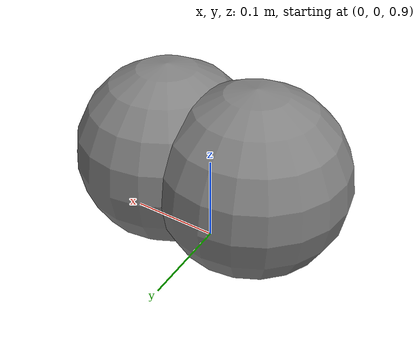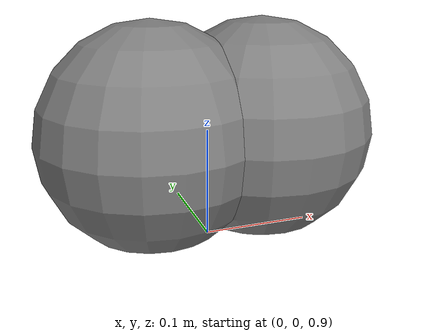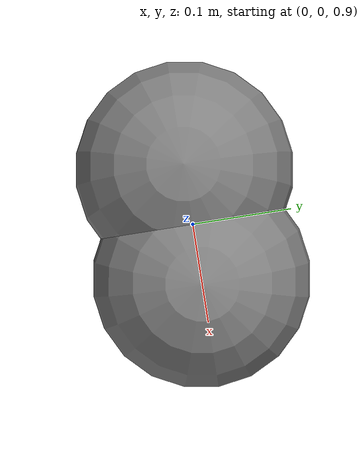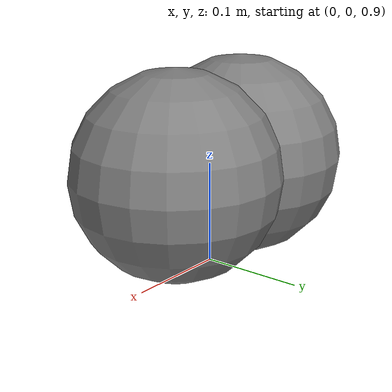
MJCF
<mujoco model="pair-override">
  <option gravity="0 0 -9.81" timestep="0.002"/>
  <worldbody>
    <body name="left" pos="-0.05 0 1">
      <freejoint name="left_free"/>
      <geom name="left_geom" type="sphere" size="0.1" mass="1.0"
            contype="1" conaffinity="0"/>
    </body>
    <body name="right" pos="0.05 0 1">
      <freejoint name="right_free"/>
      <geom name="right_geom" type="sphere" size="0.1" mass="1.0"
            contype="1" conaffinity="0"/>
    </body>
  </worldbody>
  <contact>
    <pair geom1="left_geom" geom2="right_geom" condim="1" friction="0 0 0 0 0"/>
  </contact>
</mujoco>
